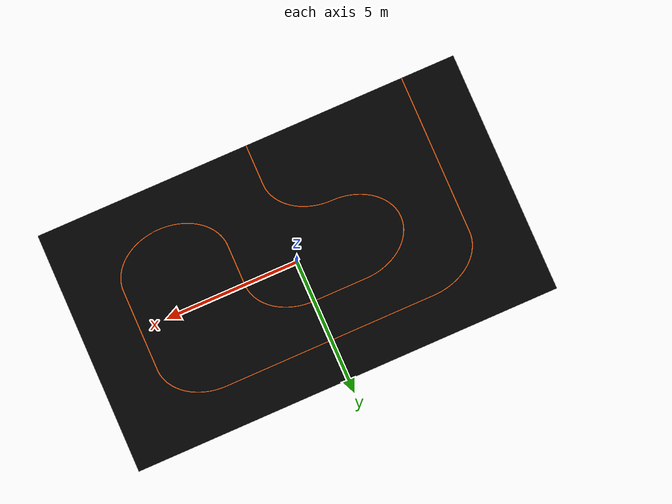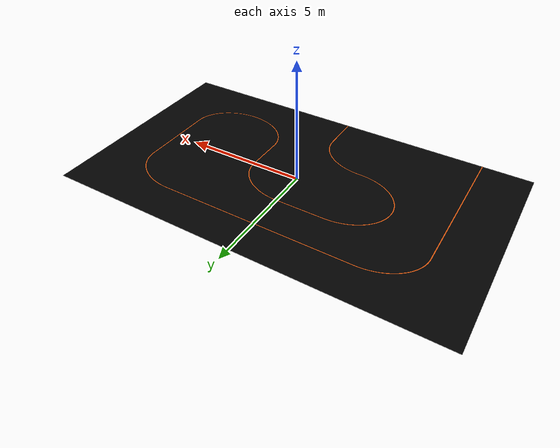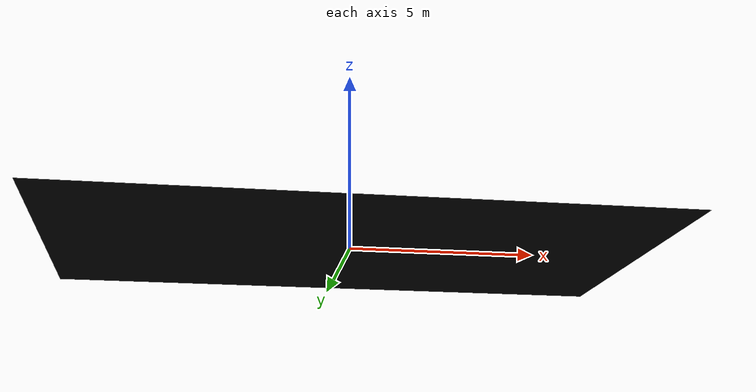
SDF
<?xml version="1.0" ?>
<sdf version="1.5">
  <model name="track_world">
    <static>true</static>
    <link name="track_world">
      <pose frame=''>0 0 0 0 0 0</pose>
      <collision name="track_world">
        <geometry>
          <mesh>
            <uri>model://track_world/meshes/track.dae</uri>
          </mesh>
        </geometry>
      </collision>
      <visual name="track_world">
        <cast_shadows>false</cast_shadows>
        <geometry>
          <mesh>
            <uri>model://track_world/meshes/track.dae</uri>
            <scale>2 1.5 1</scale>
          </mesh>
        </geometry>
        <material>
          <script>
            <uri>model://track_world/meshes/track.dae</uri>
            <name>Traffic lisht</name>
          </script>
        </material>
      </visual>
    </link>
  </model>
</sdf>
